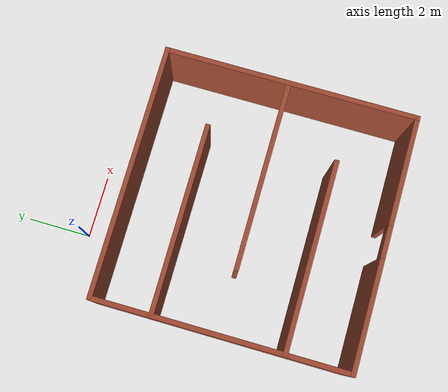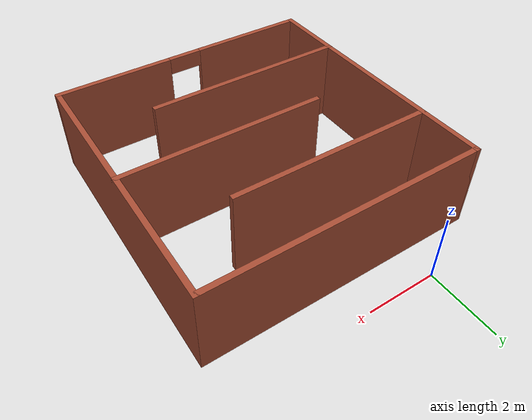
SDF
<?xml version='1.0'?>
<sdf version='1.6'>
  <model name='puzzle'>
    <pose frame=''>1.989 -4.9515 0 0 -0 0</pose>
    <link name='Wall_0'>
      <collision name='Wall_0_Collision'>
        <geometry>
          <box>
            <size>8 0.15 2.5</size>
          </box>
        </geometry>
        <pose frame=''>0 0 1.25 0 -0 0</pose>
      </collision>
      <visual name='Wall_0_Visual'>
        <pose frame=''>0 0 1.25 0 -0 0</pose>
        <geometry>
          <box>
            <size>8 0.15 2.5</size>
          </box>
        </geometry>
        <material>
          <script>
            <uri>file://media/materials/scripts/gazebo.material</uri>
            <name>Gazebo/Bricks</name>
          </script>
          <ambient>1 1 1 1</ambient>
        </material>
        <meta>
          <layer>0</layer>
        </meta>
      </visual>
      <pose frame=''>0 3.925 0 0 -0 0</pose>
    </link>
    <link name='Wall_14'>
      <collision name='Wall_14_Collision'>
        <geometry>
          <box>
            <size>6 0.15 2.5</size>
          </box>
        </geometry>
        <pose frame=''>0 0 1.25 0 -0 0</pose>
      </collision>
      <visual name='Wall_14_Visual'>
        <pose frame=''>0 0 1.25 0 -0 0</pose>
        <geometry>
          <box>
            <size>6 0.15 2.5</size>
          </box>
        </geometry>
        <material>
          <script>
            <uri>file://media/materials/scripts/gazebo.material</uri>
            <name>Gazebo/Bricks</name>
          </script>
          <ambient>1 1 1 1</ambient>
        </material>
        <meta>
          <layer>0</layer>
        </meta>
      </visual>
      <pose frame=''>-1 -1.925 0 0 -0 0</pose>
    </link>
    <link name='Wall_17'>
      <collision name='Wall_17_Collision'>
        <geometry>
          <box>
            <size>6 0.15 2.5</size>
          </box>
        </geometry>
        <pose frame=''>0 0 1.25 0 -0 0</pose>
      </collision>
      <visual name='Wall_17_Visual'>
        <pose frame=''>0 0 1.25 0 -0 0</pose>
        <geometry>
          <box>
            <size>6 0.15 2.5</size>
          </box>
        </geometry>
        <material>
          <script>
            <uri>file://media/materials/scripts/gazebo.material</uri>
            <name>Gazebo/Bricks</name>
          </script>
          <ambient>1 1 1 1</ambient>
        </material>
        <meta>
          <layer>0</layer>
        </meta>
      </visual>
      <pose frame=''>1 0.075 0 0 -0 3.14159</pose>
    </link>
    <link name='Wall_2'>
      <collision name='Wall_2_Collision'>
        <geometry>
          <box>
            <size>8 0.15 2.5</size>
          </box>
        </geometry>
        <pose frame=''>0 0 1.25 0 -0 0</pose>
      </collision>
      <visual name='Wall_2_Visual'>
        <pose frame=''>0 0 1.25 0 -0 0</pose>
        <geometry>
          <box>
            <size>8 0.15 2.5</size>
          </box>
        </geometry>
        <material>
          <script>
            <uri>file://media/materials/scripts/gazebo.material</uri>
            <name>Gazebo/Bricks</name>
          </script>
          <ambient>1 1 1 1</ambient>
        </material>
        <meta>
          <layer>0</layer>
        </meta>
      </visual>
      <pose frame=''>3.925 0 0 0 0 -1.5708</pose>
    </link>
    <link name='Wall_4'>
      <collision name='Wall_4_Collision'>
        <geometry>
          <box>
            <size>8 0.15 2.5</size>
          </box>
        </geometry>
        <pose frame=''>0 0 1.25 0 -0 0</pose>
      </collision>
      <visual name='Wall_4_Visual'>
        <pose frame=''>0 0 1.25 0 -0 0</pose>
        <geometry>
          <box>
            <size>8 0.15 2.5</size>
          </box>
        </geometry>
        <material>
          <script>
            <uri>file://media/materials/scripts/gazebo.material</uri>
            <name>Gazebo/Bricks</name>
          </script>
          <ambient>1 1 1 1</ambient>
        </material>
        <meta>
          <layer>0</layer>
        </meta>
      </visual>
      <pose frame=''>-3.925 0 0 0 0 -1.5708</pose>
    </link>
    <link name='Wall_5'>
      <pose frame=''>0 -3.925 0 0 -0 0</pose>
      <visual name='Wall_5_Visual_0'>
        <pose frame=''>-2.2375 0 1.25 0 -0 0</pose>
        <geometry>
          <box>
            <size>3.525 0.15 2.5</size>
          </box>
        </geometry>
        <material>
          <script>
            <uri>file://media/materials/scripts/gazebo.material</uri>
            <name>Gazebo/Bricks</name>
          </script>
          <ambient>1 1 1 1</ambient>
        </material>
        <meta>
          <layer>0</layer>
        </meta>
      </visual>
      <collision name='Wall_5_Collision_0'>
        <geometry>
          <box>
            <size>3.525 0.15 2.5</size>
          </box>
        </geometry>
        <pose frame=''>-2.2375 0 1.25 0 -0 0</pose>
      </collision>
      <visual name='Wall_5_Visual_1'>
        <pose frame=''>2.2625 0 1.25 0 -0 0</pose>
        <geometry>
          <box>
            <size>3.475 0.15 2.5</size>
          </box>
        </geometry>
        <material>
          <script>
            <uri>file://media/materials/scripts/gazebo.material</uri>
            <name>Gazebo/Bricks</name>
          </script>
          <ambient>1 1 1 1</ambient>
        </material>
        <meta>
          <layer>0</layer>
        </meta>
      </visual>
      <collision name='Wall_5_Collision_1'>
        <geometry>
          <box>
            <size>3.475 0.15 2.5</size>
          </box>
        </geometry>
        <pose frame=''>2.2625 0 1.25 0 -0 0</pose>
      </collision>
      <visual name='Wall_5_Visual_2'>
        <pose frame=''>0.025 0 2.25 0 -0 0</pose>
        <geometry>
          <box>
            <size>1 0.15 0.5</size>
          </box>
        </geometry>
        <material>
          <script>
            <uri>file://media/materials/scripts/gazebo.material</uri>
            <name>Gazebo/Bricks</name>
          </script>
          <ambient>1 1 1 1</ambient>
        </material>
        <meta>
          <layer>0</layer>
        </meta>
      </visual>
      <collision name='Wall_5_Collision_2'>
        <geometry>
          <box>
            <size>1 0.15 0.5</size>
          </box>
        </geometry>
        <pose frame=''>0.025 0 2.25 0 -0 0</pose>
      </collision>
    </link>
    <link name='Wall_8'>
      <collision name='Wall_8_Collision'>
        <geometry>
          <box>
            <size>6 0.15 2.5</size>
          </box>
        </geometry>
        <pose frame=''>0 0 1.25 0 -0 0</pose>
      </collision>
      <visual name='Wall_8_Visual'>
        <pose frame=''>0 0 1.25 0 -0 0</pose>
        <geometry>
          <box>
            <size>6 0.15 2.5</size>
          </box>
        </geometry>
        <material>
          <script>
            <uri>file://media/materials/scripts/gazebo.material</uri>
            <name>Gazebo/Bricks</name>
          </script>
          <ambient>1 1 1 1</ambient>
        </material>
        <meta>
          <layer>0</layer>
        </meta>
      </visual>
      <pose frame=''>-1 2.0755 0 0 -0 0</pose>
    </link>
    <static>1</static>
  </model>
</sdf>
